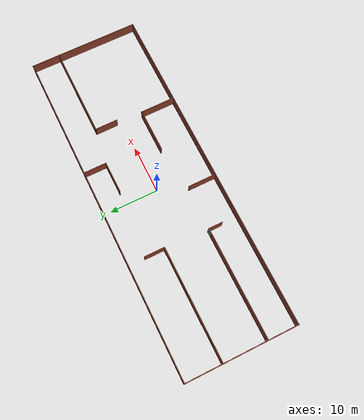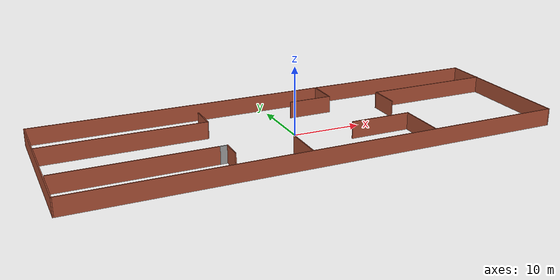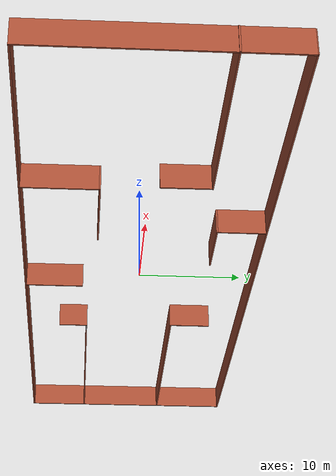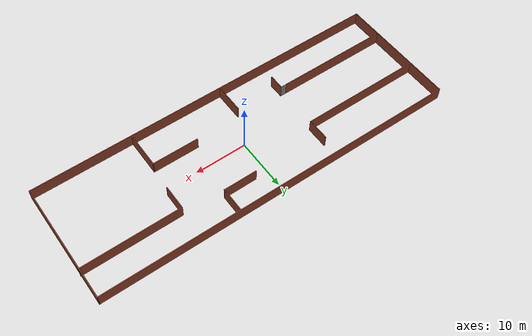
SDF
<?xml version='1.0'?>
<sdf version='1.7'>
  <model name='zangbeel'>
    <pose>0.206266 0.100916 0 0 -0 0</pose>
    <link name='Wall_0'>
      <collision name='Wall_0_Collision'>
        <geometry>
          <box>
            <size>23.25 0.15 2.5</size>
          </box>
        </geometry>
        <pose>0 0 1.25 0 -0 0</pose>
      </collision>
      <visual name='Wall_0_Visual'>
        <pose>0 0 1.25 0 -0 0</pose>
        <geometry>
          <box>
            <size>23.25 0.15 2.5</size>
          </box>
        </geometry>
        <material>
          <script>
            <uri>file://media/materials/scripts/gazebo.material</uri>
            <name>Gazebo/Bricks</name>
          </script>
          <ambient>1 1 1 1</ambient>
        </material>
        <meta>
          <layer>0</layer>
        </meta>
      </visual>
      <pose>-34.9626 -0.000133 0 0 -0 -1.5708</pose>
    </link>
    <link name='Wall_1'>
      <collision name='Wall_1_Collision'>
        <geometry>
          <box>
            <size>70 0.15 2.5</size>
          </box>
        </geometry>
        <pose>0 0 1.25 0 -0 0</pose>
      </collision>
      <visual name='Wall_1_Visual'>
        <pose>0 0 1.25 0 -0 0</pose>
        <geometry>
          <box>
            <size>70 0.15 2.5</size>
          </box>
        </geometry>
        <material>
          <script>
            <uri>file://media/materials/scripts/gazebo.material</uri>
            <name>Gazebo/Bricks</name>
          </script>
          <ambient>1 1 1 1</ambient>
        </material>
        <meta>
          <layer>0</layer>
        </meta>
      </visual>
      <pose>-0.037587 -11.5501 0 0 -0 0</pose>
    </link>
    <link name='Wall_10'>
      <collision name='Wall_10_Collision'>
        <geometry>
          <box>
            <size>3 0.15 2.5</size>
          </box>
        </geometry>
        <pose>0 0 1.25 0 -0 0</pose>
      </collision>
      <visual name='Wall_10_Visual'>
        <pose>0 0 1.25 0 -0 0</pose>
        <geometry>
          <box>
            <size>3 0.15 2.5</size>
          </box>
        </geometry>
        <material>
          <script>
            <uri>file://media/materials/scripts/gazebo.material</uri>
            <name>Gazebo/Bricks</name>
          </script>
          <ambient>1 1 1 1</ambient>
        </material>
        <meta>
          <layer>0</layer>
        </meta>
      </visual>
      <pose>-12.03 -6.71679 0 0 -0 -1.5708</pose>
    </link>
    <link name='Wall_12'>
      <collision name='Wall_12_Collision'>
        <geometry>
          <box>
            <size>19 0.15 2.5</size>
          </box>
        </geometry>
        <pose>0 0 1.25 0 -0 0</pose>
      </collision>
      <visual name='Wall_12_Visual'>
        <pose>0 0 1.25 0 -0 0</pose>
        <geometry>
          <box>
            <size>19 0.15 2.5</size>
          </box>
        </geometry>
        <material>
          <script>
            <uri>file://media/materials/scripts/gazebo.material</uri>
            <name>Gazebo/Bricks</name>
          </script>
          <ambient>1 1 1 1</ambient>
        </material>
        <meta>
          <layer>0</layer>
        </meta>
      </visual>
      <pose>25.5379 5.50176 0 0 -0 3.14159</pose>
    </link>
    <link name='Wall_13'>
      <collision name='Wall_13_Collision'>
        <geometry>
          <box>
            <size>4.75 0.15 2.5</size>
          </box>
        </geometry>
        <pose>0 0 1.25 0 -0 0</pose>
      </collision>
      <visual name='Wall_13_Visual'>
        <pose>0 0 1.25 0 -0 0</pose>
        <geometry>
          <box>
            <size>4.75 0.15 2.5</size>
          </box>
        </geometry>
        <material>
          <script>
            <uri>file://media/materials/scripts/gazebo.material</uri>
            <name>Gazebo/Bricks</name>
          </script>
          <ambient>1 1 1 1</ambient>
        </material>
        <meta>
          <layer>0</layer>
        </meta>
      </visual>
      <pose>16.1129 3.20176 0 0 -0 -1.5708</pose>
    </link>
    <link name='Wall_15'>
      <collision name='Wall_15_Collision'>
        <geometry>
          <box>
            <size>7.25 0.15 2.5</size>
          </box>
        </geometry>
        <pose>0 0 1.25 0 -0 0</pose>
      </collision>
      <visual name='Wall_15_Visual'>
        <pose>0 0 1.25 0 -0 0</pose>
        <geometry>
          <box>
            <size>7.25 0.15 2.5</size>
          </box>
        </geometry>
        <material>
          <script>
            <uri>file://media/materials/scripts/gazebo.material</uri>
            <name>Gazebo/Bricks</name>
          </script>
          <ambient>1 1 1 1</ambient>
        </material>
        <meta>
          <layer>0</layer>
        </meta>
      </visual>
      <pose>15.5159 -7.976 0 0 -0 1.5708</pose>
    </link>
    <link name='Wall_16'>
      <collision name='Wall_16_Collision'>
        <geometry>
          <box>
            <size>9 0.15 2.5</size>
          </box>
        </geometry>
        <pose>0 0 1.25 0 -0 0</pose>
      </collision>
      <visual name='Wall_16_Visual'>
        <pose>0 0 1.25 0 -0 0</pose>
        <geometry>
          <box>
            <size>9 0.15 2.5</size>
          </box>
        </geometry>
        <material>
          <script>
            <uri>file://media/materials/scripts/gazebo.material</uri>
            <name>Gazebo/Bricks</name>
          </script>
          <ambient>1 1 1 1</ambient>
        </material>
        <meta>
          <layer>0</layer>
        </meta>
      </visual>
      <pose>11.0909 -4.42599 0 0 -0 3.14159</pose>
    </link>
    <link name='Wall_18'>
      <collision name='Wall_18_Collision'>
        <geometry>
          <box>
            <size>4.75 0.15 2.5</size>
          </box>
        </geometry>
        <pose>0 0 1.25 0 -0 0</pose>
      </collision>
      <visual name='Wall_18_Visual'>
        <pose>0 0 1.25 0 -0 0</pose>
        <geometry>
          <box>
            <size>4.75 0.15 2.5</size>
          </box>
        </geometry>
        <material>
          <script>
            <uri>file://media/materials/scripts/gazebo.material</uri>
            <name>Gazebo/Bricks</name>
          </script>
          <ambient>1 1 1 1</ambient>
        </material>
        <meta>
          <layer>0</layer>
        </meta>
      </visual>
      <pose>8.63032 9.01725 0 0 -0 -1.5708</pose>
    </link>
    <link name='Wall_19'>
      <collision name='Wall_19_Collision'>
        <geometry>
          <box>
            <size>6.5 0.15 2.5</size>
          </box>
        </geometry>
        <pose>0 0 1.25 0 -0 0</pose>
      </collision>
      <visual name='Wall_19_Visual'>
        <pose>0 0 1.25 0 -0 0</pose>
        <geometry>
          <box>
            <size>6.5 0.15 2.5</size>
          </box>
        </geometry>
        <material>
          <script>
            <uri>file://media/materials/scripts/gazebo.material</uri>
            <name>Gazebo/Bricks</name>
          </script>
          <ambient>1 1 1 1</ambient>
        </material>
        <meta>
          <layer>0</layer>
        </meta>
      </visual>
      <pose>5.45532 6.71725 0 0 -0 3.14159</pose>
    </link>
    <link name='Wall_2'>
      <collision name='Wall_2_Collision'>
        <geometry>
          <box>
            <size>23 0.15 2.5</size>
          </box>
        </geometry>
        <pose>0 0 1.25 0 -0 0</pose>
      </collision>
      <visual name='Wall_2_Visual'>
        <pose>0 0 1.25 0 -0 0</pose>
        <geometry>
          <box>
            <size>23 0.15 2.5</size>
          </box>
        </geometry>
        <material>
          <script>
            <uri>file://media/materials/scripts/gazebo.material</uri>
            <name>Gazebo/Bricks</name>
          </script>
          <ambient>1 1 1 1</ambient>
        </material>
        <meta>
          <layer>0</layer>
        </meta>
      </visual>
      <pose>34.8874 -0.125133 0 0 -0 1.5708</pose>
    </link>
    <link name='Wall_21'>
      <collision name='Wall_21_Collision'>
        <geometry>
          <box>
            <size>5.75 0.15 2.5</size>
          </box>
        </geometry>
        <pose>0 0 1.25 0 -0 0</pose>
      </collision>
      <visual name='Wall_21_Visual'>
        <pose>0 0 1.25 0 -0 0</pose>
        <geometry>
          <box>
            <size>5.75 0.15 2.5</size>
          </box>
        </geometry>
        <material>
          <script>
            <uri>file://media/materials/scripts/gazebo.material</uri>
            <name>Gazebo/Bricks</name>
          </script>
          <ambient>1 1 1 1</ambient>
        </material>
        <meta>
          <layer>0</layer>
        </meta>
      </visual>
      <pose>-2.86109 -8.63295 0 0 -0 1.5708</pose>
    </link>
    <link name='Wall_3'>
      <collision name='Wall_3_Collision'>
        <geometry>
          <box>
            <size>70.0004 0.15 2.5</size>
          </box>
        </geometry>
        <pose>0 0 1.25 0 -0 0</pose>
      </collision>
      <visual name='Wall_3_Visual'>
        <pose>0 0 1.25 0 -0 0</pose>
        <geometry>
          <box>
            <size>70.0004 0.15 2.5</size>
          </box>
        </geometry>
        <material>
          <script>
            <uri>file://media/materials/scripts/gazebo.material</uri>
            <name>Gazebo/Bricks</name>
          </script>
          <ambient>1 1 1 1</ambient>
        </material>
        <meta>
          <layer>0</layer>
        </meta>
      </visual>
      <pose>-0.037587 11.4249 0 0 -0 3.13801</pose>
    </link>
    <link name='Wall_5'>
      <collision name='Wall_5_Collision'>
        <geometry>
          <box>
            <size>23.5 0.15 2.5</size>
          </box>
        </geometry>
        <pose>0 0 1.25 0 -0 0</pose>
      </collision>
      <visual name='Wall_5_Visual'>
        <pose>0 0 1.25 0 -0 0</pose>
        <geometry>
          <box>
            <size>23.5 0.15 2.5</size>
          </box>
        </geometry>
        <material>
          <script>
            <uri>file://media/materials/scripts/gazebo.material</uri>
            <name>Gazebo/Bricks</name>
          </script>
          <ambient>1 1 1 1</ambient>
        </material>
        <meta>
          <layer>0</layer>
        </meta>
      </visual>
      <pose>-23.2411 3.87342 0 0 -0 0</pose>
    </link>
    <link name='Wall_6'>
      <collision name='Wall_6_Collision'>
        <geometry>
          <box>
            <size>4.25 0.15 2.5</size>
          </box>
        </geometry>
        <pose>0 0 1.25 0 -0 0</pose>
      </collision>
      <visual name='Wall_6_Visual'>
        <pose>0 0 1.25 0 -0 0</pose>
        <geometry>
          <box>
            <size>4.25 0.15 2.5</size>
          </box>
        </geometry>
        <material>
          <script>
            <uri>file://media/materials/scripts/gazebo.material</uri>
            <name>Gazebo/Bricks</name>
          </script>
          <ambient>1 1 1 1</ambient>
        </material>
        <meta>
          <layer>0</layer>
        </meta>
      </visual>
      <pose>-11.5661 5.92342 0 0 -0 1.5708</pose>
    </link>
    <link name='Wall_8'>
      <collision name='Wall_8_Collision'>
        <geometry>
          <box>
            <size>21.75 0.15 2.5</size>
          </box>
        </geometry>
        <pose>0 0 1.25 0 -0 0</pose>
      </collision>
      <visual name='Wall_8_Visual'>
        <pose>0 0 1.25 0 -0 0</pose>
        <geometry>
          <box>
            <size>21.75 0.15 2.5</size>
          </box>
        </geometry>
        <material>
          <script>
            <uri>file://media/materials/scripts/gazebo.material</uri>
            <name>Gazebo/Bricks</name>
          </script>
          <ambient>1 1 1 1</ambient>
        </material>
        <meta>
          <layer>0</layer>
        </meta>
      </visual>
      <pose>-23.93 -5.29179 0 0 -0 0</pose>
    </link>
    <link name='Wall_9'>
      <collision name='Wall_9_Collision'>
        <geometry>
          <box>
            <size>1.25 0.15 2.5</size>
          </box>
        </geometry>
        <pose>0 0 1.25 0 -0 0</pose>
      </collision>
      <visual name='Wall_9_Visual'>
        <pose>0 0 1.25 0 -0 0</pose>
        <geometry>
          <box>
            <size>1.25 0.15 2.5</size>
          </box>
        </geometry>
        <material>
          <script>
            <uri>file://media/materials/scripts/gazebo.material</uri>
            <name>Gazebo/Grey</name>
          </script>
          <ambient>1 1 1 1</ambient>
        </material>
        <meta>
          <layer>0</layer>
        </meta>
      </visual>
      <pose>-12.58 -5.29179 0 0 -0 0</pose>
    </link>
    <static>1</static>
  </model>
</sdf>
